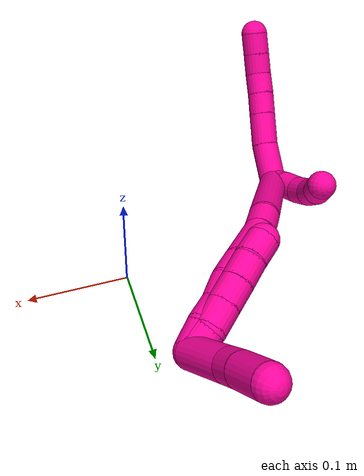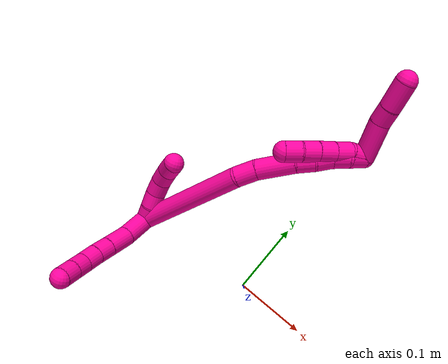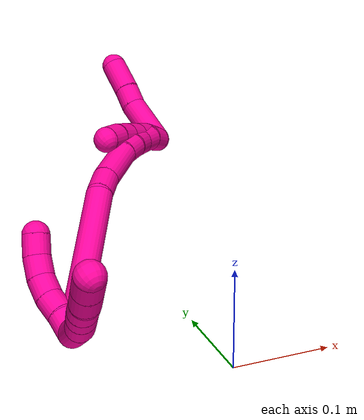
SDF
<sdf version="1.7">
 <world name="default">
  <model name="18">
   <static>0</static>
   <link name="18">
    <collision name="collision-cylinder-e_1_2_8">
     <pose>0.001398 -0.017551 -0.007106 1.95548 0.073693 0.109279</pose>
     <geometry><cylinder><radius>0.0125</radius><length>0.037974</length></cylinder></geometry>
     <surface>
      <friction><ode><mu>1.16</mu><mu2>1.16</mu2><slip1>0</slip1><slip2>0</slip2></ode></friction>
      <contact><ode><kp>1e+06</kp><kd>1</kd><max_vel>0</max_vel><min_depth>0.001</min_depth></ode></contact>
     </surface>
    </collision>
    <visual name="visual-cylinder-e_1_2_8">
     <pose>0.001398 -0.017551 -0.007106 1.95548 0.073693 0.109279</pose>
     <geometry><cylinder><radius>0.0125</radius><length>0.037974</length></cylinder></geometry>
     <material><ambient>1 0.007843 0.615686 1</ambient></material>
    </visual>
    <collision name="collision-cylinder-e_2_8_9">
     <pose>0.002845 -0.050009 -0.018105 1.82628 0.003207 0.004152</pose>
     <geometry><cylinder><radius>0.0125</radius><length>0.030813</length></cylinder></geometry>
     <surface>
      <friction><ode><mu>1.16</mu><mu2>1.16</mu2><slip1>0</slip1><slip2>0</slip2></ode></friction>
      <contact><ode><kp>1e+06</kp><kd>1</kd><max_vel>0</max_vel><min_depth>0.001</min_depth></ode></contact>
     </surface>
    </collision>
    <visual name="visual-cylinder-e_2_8_9">
     <pose>0.002845 -0.050009 -0.018105 1.82628 0.003207 0.004152</pose>
     <geometry><cylinder><radius>0.0125</radius><length>0.030813</length></cylinder></geometry>
     <material><ambient>1 0.007843 0.615686 1</ambient></material>
    </visual>
    <collision name="collision-cylinder-e_3_9_10">
     <pose>0.00306 -0.074988 -0.024319 1.79722 0.015968 0.020065</pose>
     <geometry><cylinder><radius>0.0125</radius><length>0.020675</length></cylinder></geometry>
     <surface>
      <friction><ode><mu>1.16</mu><mu2>1.16</mu2><slip1>0</slip1><slip2>0</slip2></ode></friction>
      <contact><ode><kp>1e+06</kp><kd>1</kd><max_vel>0</max_vel><min_depth>0.001</min_depth></ode></contact>
     </surface>
    </collision>
    <visual name="visual-cylinder-e_3_9_10">
     <pose>0.00306 -0.074988 -0.024319 1.79722 0.015968 0.020065</pose>
     <geometry><cylinder><radius>0.0125</radius><length>0.020675</length></cylinder></geometry>
     <material><ambient>1 0.007843 0.615686 1</ambient></material>
    </visual>
    <collision name="collision-cylinder-e_4_10_11">
     <pose>0.00384 -0.094914 -0.029039 1.80972 0.060551 0.077056</pose>
     <geometry><cylinder><radius>0.0125</radius><length>0.020319</length></cylinder></geometry>
     <surface>
      <friction><ode><mu>1.16</mu><mu2>1.16</mu2><slip1>0</slip1><slip2>0</slip2></ode></friction>
      <contact><ode><kp>1e+06</kp><kd>1</kd><max_vel>0</max_vel><min_depth>0.001</min_depth></ode></contact>
     </surface>
    </collision>
    <visual name="visual-cylinder-e_4_10_11">
     <pose>0.00384 -0.094914 -0.029039 1.80972 0.060551 0.077056</pose>
     <geometry><cylinder><radius>0.0125</radius><length>0.020319</length></cylinder></geometry>
     <material><ambient>1 0.007843 0.615686 1</ambient></material>
    </visual>
    <collision name="collision-cylinder-e_5_11_12">
     <pose>0.005981 -0.114674 -0.031983 1.62562 0.152669 0.16124</pose>
     <geometry><cylinder><radius>0.0125</radius><length>0.020078</length></cylinder></geometry>
     <surface>
      <friction><ode><mu>1.16</mu><mu2>1.16</mu2><slip1>0</slip1><slip2>0</slip2></ode></friction>
      <contact><ode><kp>1e+06</kp><kd>1</kd><max_vel>0</max_vel><min_depth>0.001</min_depth></ode></contact>
     </surface>
    </collision>
    <visual name="visual-cylinder-e_5_11_12">
     <pose>0.005981 -0.114674 -0.031983 1.62562 0.152669 0.16124</pose>
     <geometry><cylinder><radius>0.0125</radius><length>0.020078</length></cylinder></geometry>
     <material><ambient>1 0.007843 0.615686 1</ambient></material>
    </visual>
    <collision name="collision-cylinder-e_6_12_6">
     <pose>0.009111 -0.134509 -0.033047 1.62316 0.159927 0.168488</pose>
     <geometry><cylinder><radius>0.0125</radius><length>0.020141</length></cylinder></geometry>
     <surface>
      <friction><ode><mu>1.16</mu><mu2>1.16</mu2><slip1>0</slip1><slip2>0</slip2></ode></friction>
      <contact><ode><kp>1e+06</kp><kd>1</kd><max_vel>0</max_vel><min_depth>0.001</min_depth></ode></contact>
     </surface>
    </collision>
    <visual name="visual-cylinder-e_6_12_6">
     <pose>0.009111 -0.134509 -0.033047 1.62316 0.159927 0.168488</pose>
     <geometry><cylinder><radius>0.0125</radius><length>0.020141</length></cylinder></geometry>
     <material><ambient>1 0.007843 0.615686 1</ambient></material>
    </visual>
    <collision name="collision-cylinder-e_1_2_13">
     <pose>8.8e-05 -2.1e-05 0.01 0.002085 0.008831 9e-06</pose>
     <geometry><cylinder><radius>0.0125</radius><length>0.02</length></cylinder></geometry>
     <surface>
      <friction><ode><mu>1.16</mu><mu2>1.16</mu2><slip1>0</slip1><slip2>0</slip2></ode></friction>
      <contact><ode><kp>1e+06</kp><kd>1</kd><max_vel>0</max_vel><min_depth>0.001</min_depth></ode></contact>
     </surface>
    </collision>
    <visual name="visual-cylinder-e_1_2_13">
     <pose>8.8e-05 -2.1e-05 0.01 0.002085 0.008831 9e-06</pose>
     <geometry><cylinder><radius>0.0125</radius><length>0.02</length></cylinder></geometry>
     <material><ambient>1 0.007843 0.615686 1</ambient></material>
    </visual>
    <collision name="collision-cylinder-e_2_13_14">
     <pose>-0.00056 0.001213 0.029893 -0.12611 -0.073739 0.004658</pose>
     <geometry><cylinder><radius>0.0125</radius><length>0.02</length></cylinder></geometry>
     <surface>
      <friction><ode><mu>1.16</mu><mu2>1.16</mu2><slip1>0</slip1><slip2>0</slip2></ode></friction>
      <contact><ode><kp>1e+06</kp><kd>1</kd><max_vel>0</max_vel><min_depth>0.001</min_depth></ode></contact>
     </surface>
    </collision>
    <visual name="visual-cylinder-e_2_13_14">
     <pose>-0.00056 0.001213 0.029893 -0.12611 -0.073739 0.004658</pose>
     <geometry><cylinder><radius>0.0125</radius><length>0.02</length></cylinder></geometry>
     <material><ambient>1 0.007843 0.615686 1</ambient></material>
    </visual>
    <collision name="collision-cylinder-e_3_14_15">
     <pose>-0.000254 0.0021 0.049725 0.036948 0.104519 0.001933</pose>
     <geometry><cylinder><radius>0.0125</radius><length>0.02</length></cylinder></geometry>
     <surface>
      <friction><ode><mu>1.16</mu><mu2>1.16</mu2><slip1>0</slip1><slip2>0</slip2></ode></friction>
      <contact><ode><kp>1e+06</kp><kd>1</kd><max_vel>0</max_vel><min_depth>0.001</min_depth></ode></contact>
     </surface>
    </collision>
    <visual name="visual-cylinder-e_3_14_15">
     <pose>-0.000254 0.0021 0.049725 0.036948 0.104519 0.001933</pose>
     <geometry><cylinder><radius>0.0125</radius><length>0.02</length></cylinder></geometry>
     <material><ambient>1 0.007843 0.615686 1</ambient></material>
    </visual>
    <collision name="collision-cylinder-e_4_15_16">
     <pose>0.003684 -0.000358 0.069005 0.220134 0.293649 0.032685</pose>
     <geometry><cylinder><radius>0.0125</radius><length>0.02</length></cylinder></geometry>
     <surface>
      <friction><ode><mu>1.16</mu><mu2>1.16</mu2><slip1>0</slip1><slip2>0</slip2></ode></friction>
      <contact><ode><kp>1e+06</kp><kd>1</kd><max_vel>0</max_vel><min_depth>0.001</min_depth></ode></contact>
     </surface>
    </collision>
    <visual name="visual-cylinder-e_4_15_16">
     <pose>0.003684 -0.000358 0.069005 0.220134 0.293649 0.032685</pose>
     <geometry><cylinder><radius>0.0125</radius><length>0.02</length></cylinder></geometry>
     <material><ambient>1 0.007843 0.615686 1</ambient></material>
    </visual>
    <collision name="collision-cylinder-e_5_16_5">
     <pose>0.010723 -0.006076 0.086692 0.410051 0.427363 0.090186</pose>
     <geometry><cylinder><radius>0.0125</radius><length>0.02</length></cylinder></geometry>
     <surface>
      <friction><ode><mu>1.16</mu><mu2>1.16</mu2><slip1>0</slip1><slip2>0</slip2></ode></friction>
      <contact><ode><kp>1e+06</kp><kd>1</kd><max_vel>0</max_vel><min_depth>0.001</min_depth></ode></contact>
     </surface>
    </collision>
    <visual name="visual-cylinder-e_5_16_5">
     <pose>0.010723 -0.006076 0.086692 0.410051 0.427363 0.090186</pose>
     <geometry><cylinder><radius>0.0125</radius><length>0.02</length></cylinder></geometry>
     <material><ambient>1 0.007843 0.615686 1</ambient></material>
    </visual>
    <collision name="collision-cylinder-e_1_2_17">
     <pose>0.043815 0.005803 0.058168 -0.099433 0.643203 -0.033152</pose>
     <geometry><cylinder><radius>0.0125</radius><length>0.146109</length></cylinder></geometry>
     <surface>
      <friction><ode><mu>1.16</mu><mu2>1.16</mu2><slip1>0</slip1><slip2>0</slip2></ode></friction>
      <contact><ode><kp>1e+06</kp><kd>1</kd><max_vel>0</max_vel><min_depth>0.001</min_depth></ode></contact>
     </surface>
    </collision>
    <visual name="visual-cylinder-e_1_2_17">
     <pose>0.043815 0.005803 0.058168 -0.099433 0.643203 -0.033152</pose>
     <geometry><cylinder><radius>0.0125</radius><length>0.146109</length></cylinder></geometry>
     <material><ambient>1 0.007843 0.615686 1</ambient></material>
    </visual>
    <collision name="collision-cylinder-e_2_17_18">
     <pose>0.095477 0.016024 0.125299 -0.458003 0.665679 -0.160811</pose>
     <geometry><cylinder><radius>0.0125</radius><length>0.025411</length></cylinder></geometry>
     <surface>
      <friction><ode><mu>1.16</mu><mu2>1.16</mu2><slip1>0</slip1><slip2>0</slip2></ode></friction>
      <contact><ode><kp>1e+06</kp><kd>1</kd><max_vel>0</max_vel><min_depth>0.001</min_depth></ode></contact>
     </surface>
    </collision>
    <visual name="visual-cylinder-e_2_17_18">
     <pose>0.095477 0.016024 0.125299 -0.458003 0.665679 -0.160811</pose>
     <geometry><cylinder><radius>0.0125</radius><length>0.025411</length></cylinder></geometry>
     <material><ambient>1 0.007843 0.615686 1</ambient></material>
    </visual>
    <collision name="collision-cylinder-e_3_18_19">
     <pose>0.120159 0.028282 0.14778 -0.525543 0.822586 -0.233584</pose>
     <geometry><cylinder><radius>0.0125</radius><length>0.045938</length></cylinder></geometry>
     <surface>
      <friction><ode><mu>1.16</mu><mu2>1.16</mu2><slip1>0</slip1><slip2>0</slip2></ode></friction>
      <contact><ode><kp>1e+06</kp><kd>1</kd><max_vel>0</max_vel><min_depth>0.001</min_depth></ode></contact>
     </surface>
    </collision>
    <visual name="visual-cylinder-e_3_18_19">
     <pose>0.120159 0.028282 0.14778 -0.525543 0.822586 -0.233584</pose>
     <geometry><cylinder><radius>0.0125</radius><length>0.045938</length></cylinder></geometry>
     <material><ambient>1 0.007843 0.615686 1</ambient></material>
    </visual>
    <collision name="collision-cylinder-e_4_19_20">
     <pose>0.144772 0.041548 0.166083 -0.848041 0.821644 -0.388316</pose>
     <geometry><cylinder><radius>0.0125</radius><length>0.021246</length></cylinder></geometry>
     <surface>
      <friction><ode><mu>1.16</mu><mu2>1.16</mu2><slip1>0</slip1><slip2>0</slip2></ode></friction>
      <contact><ode><kp>1e+06</kp><kd>1</kd><max_vel>0</max_vel><min_depth>0.001</min_depth></ode></contact>
     </surface>
    </collision>
    <visual name="visual-cylinder-e_4_19_20">
     <pose>0.144772 0.041548 0.166083 -0.848041 0.821644 -0.388316</pose>
     <geometry><cylinder><radius>0.0125</radius><length>0.021246</length></cylinder></geometry>
     <material><ambient>1 0.007843 0.615686 1</ambient></material>
    </visual>
    <collision name="collision-cylinder-e_5_20_21">
     <pose>0.158858 0.053865 0.175533 -0.975701 0.648535 -0.353012</pose>
     <geometry><cylinder><radius>0.0125</radius><length>0.020884</length></cylinder></geometry>
     <surface>
      <friction><ode><mu>1.16</mu><mu2>1.16</mu2><slip1>0</slip1><slip2>0</slip2></ode></friction>
      <contact><ode><kp>1e+06</kp><kd>1</kd><max_vel>0</max_vel><min_depth>0.001</min_depth></ode></contact>
     </surface>
    </collision>
    <visual name="visual-cylinder-e_5_20_21">
     <pose>0.158858 0.053865 0.175533 -0.975701 0.648535 -0.353012</pose>
     <geometry><cylinder><radius>0.0125</radius><length>0.020884</length></cylinder></geometry>
     <material><ambient>1 0.007843 0.615686 1</ambient></material>
    </visual>
    <collision name="collision-cylinder-e_6_21_22">
     <pose>0.172427 0.066689 0.183817 -1.02319 0.807428 -0.470788</pose>
     <geometry><cylinder><radius>0.0125</radius><length>0.020102</length></cylinder></geometry>
     <surface>
      <friction><ode><mu>1.16</mu><mu2>1.16</mu2><slip1>0</slip1><slip2>0</slip2></ode></friction>
      <contact><ode><kp>1e+06</kp><kd>1</kd><max_vel>0</max_vel><min_depth>0.001</min_depth></ode></contact>
     </surface>
    </collision>
    <visual name="visual-cylinder-e_6_21_22">
     <pose>0.172427 0.066689 0.183817 -1.02319 0.807428 -0.470788</pose>
     <geometry><cylinder><radius>0.0125</radius><length>0.020102</length></cylinder></geometry>
     <material><ambient>1 0.007843 0.615686 1</ambient></material>
    </visual>
    <collision name="collision-cylinder-e_7_22_1">
     <pose>0.185557 0.080601 0.189677 -1.29682 0.616032 -0.473086</pose>
     <geometry><cylinder><radius>0.0125</radius><length>0.020309</length></cylinder></geometry>
     <surface>
      <friction><ode><mu>1.16</mu><mu2>1.16</mu2><slip1>0</slip1><slip2>0</slip2></ode></friction>
      <contact><ode><kp>1e+06</kp><kd>1</kd><max_vel>0</max_vel><min_depth>0.001</min_depth></ode></contact>
     </surface>
    </collision>
    <visual name="visual-cylinder-e_7_22_1">
     <pose>0.185557 0.080601 0.189677 -1.29682 0.616032 -0.473086</pose>
     <geometry><cylinder><radius>0.0125</radius><length>0.020309</length></cylinder></geometry>
     <material><ambient>1 0.007843 0.615686 1</ambient></material>
    </visual>
    <collision name="collision-cylinder-e_1_1_23">
     <pose>0.184841 0.081064 0.19235 1.51353 -0.718585 -0.681673</pose>
     <geometry><cylinder><radius>0.0125</radius><length>0.02</length></cylinder></geometry>
     <surface>
      <friction><ode><mu>1.16</mu><mu2>1.16</mu2><slip1>0</slip1><slip2>0</slip2></ode></friction>
      <contact><ode><kp>1e+06</kp><kd>1</kd><max_vel>0</max_vel><min_depth>0.001</min_depth></ode></contact>
     </surface>
    </collision>
    <visual name="visual-cylinder-e_1_1_23">
     <pose>0.184841 0.081064 0.19235 1.51353 -0.718585 -0.681673</pose>
     <geometry><cylinder><radius>0.0125</radius><length>0.02</length></cylinder></geometry>
     <material><ambient>1 0.007843 0.615686 1</ambient></material>
    </visual>
    <collision name="collision-cylinder-e_2_23_24">
     <pose>0.171727 0.066376 0.190353 1.8971 -0.711591 -0.95599</pose>
     <geometry><cylinder><radius>0.0125</radius><length>0.02</length></cylinder></geometry>
     <surface>
      <friction><ode><mu>1.16</mu><mu2>1.16</mu2><slip1>0</slip1><slip2>0</slip2></ode></friction>
      <contact><ode><kp>1e+06</kp><kd>1</kd><max_vel>0</max_vel><min_depth>0.001</min_depth></ode></contact>
     </surface>
    </collision>
    <visual name="visual-cylinder-e_2_23_24">
     <pose>0.171727 0.066376 0.190353 1.8971 -0.711591 -0.95599</pose>
     <geometry><cylinder><radius>0.0125</radius><length>0.02</length></cylinder></geometry>
     <material><ambient>1 0.007843 0.615686 1</ambient></material>
    </visual>
    <collision name="collision-cylinder-e_3_24_25">
     <pose>0.15867 0.051993 0.185594 1.88362 -0.711089 -0.94381</pose>
     <geometry><cylinder><radius>0.0125</radius><length>0.02</length></cylinder></geometry>
     <surface>
      <friction><ode><mu>1.16</mu><mu2>1.16</mu2><slip1>0</slip1><slip2>0</slip2></ode></friction>
      <contact><ode><kp>1e+06</kp><kd>1</kd><max_vel>0</max_vel><min_depth>0.001</min_depth></ode></contact>
     </surface>
    </collision>
    <visual name="visual-cylinder-e_3_24_25">
     <pose>0.15867 0.051993 0.185594 1.88362 -0.711089 -0.94381</pose>
     <geometry><cylinder><radius>0.0125</radius><length>0.02</length></cylinder></geometry>
     <material><ambient>1 0.007843 0.615686 1</ambient></material>
    </visual>
    <collision name="collision-cylinder-e_4_25_26">
     <pose>0.145636 0.037652 0.180661 1.92056 -0.708626 -0.972682</pose>
     <geometry><cylinder><radius>0.0125</radius><length>0.02</length></cylinder></geometry>
     <surface>
      <friction><ode><mu>1.16</mu><mu2>1.16</mu2><slip1>0</slip1><slip2>0</slip2></ode></friction>
      <contact><ode><kp>1e+06</kp><kd>1</kd><max_vel>0</max_vel><min_depth>0.001</min_depth></ode></contact>
     </surface>
    </collision>
    <visual name="visual-cylinder-e_4_25_26">
     <pose>0.145636 0.037652 0.180661 1.92056 -0.708626 -0.972682</pose>
     <geometry><cylinder><radius>0.0125</radius><length>0.02</length></cylinder></geometry>
     <material><ambient>1 0.007843 0.615686 1</ambient></material>
    </visual>
    <collision name="collision-cylinder-e_5_26_4">
     <pose>0.131937 0.024392 0.17478 2.06217 -0.802478 -1.23245</pose>
     <geometry><cylinder><radius>0.0125</radius><length>0.02</length></cylinder></geometry>
     <surface>
      <friction><ode><mu>1.16</mu><mu2>1.16</mu2><slip1>0</slip1><slip2>0</slip2></ode></friction>
      <contact><ode><kp>1e+06</kp><kd>1</kd><max_vel>0</max_vel><min_depth>0.001</min_depth></ode></contact>
     </surface>
    </collision>
    <visual name="visual-cylinder-e_5_26_4">
     <pose>0.131937 0.024392 0.17478 2.06217 -0.802478 -1.23245</pose>
     <geometry><cylinder><radius>0.0125</radius><length>0.02</length></cylinder></geometry>
     <material><ambient>1 0.007843 0.615686 1</ambient></material>
    </visual>
    <collision name="collision-cylinder-e_1_1_27">
     <pose>0.190462 0.085426 0.215018 0.135664 -0.041227 -0.002801</pose>
     <geometry><cylinder><radius>0.0125</radius><length>0.046666</length></cylinder></geometry>
     <surface>
      <friction><ode><mu>1.16</mu><mu2>1.16</mu2><slip1>0</slip1><slip2>0</slip2></ode></friction>
      <contact><ode><kp>1e+06</kp><kd>1</kd><max_vel>0</max_vel><min_depth>0.001</min_depth></ode></contact>
     </surface>
    </collision>
    <visual name="visual-cylinder-e_1_1_27">
     <pose>0.190462 0.085426 0.215018 0.135664 -0.041227 -0.002801</pose>
     <geometry><cylinder><radius>0.0125</radius><length>0.046666</length></cylinder></geometry>
     <material><ambient>1 0.007843 0.615686 1</ambient></material>
    </visual>
    <collision name="collision-cylinder-e_2_27_28">
     <pose>0.190891 0.080165 0.247942 0.211395 0.137503 0.014611</pose>
     <geometry><cylinder><radius>0.0125</radius><length>0.020288</length></cylinder></geometry>
     <surface>
      <friction><ode><mu>1.16</mu><mu2>1.16</mu2><slip1>0</slip1><slip2>0</slip2></ode></friction>
      <contact><ode><kp>1e+06</kp><kd>1</kd><max_vel>0</max_vel><min_depth>0.001</min_depth></ode></contact>
     </surface>
    </collision>
    <visual name="visual-cylinder-e_2_27_28">
     <pose>0.190891 0.080165 0.247942 0.211395 0.137503 0.014611</pose>
     <geometry><cylinder><radius>0.0125</radius><length>0.020288</length></cylinder></geometry>
     <material><ambient>1 0.007843 0.615686 1</ambient></material>
    </visual>
    <collision name="collision-cylinder-e_3_28_3">
     <pose>0.193695 0.075672 0.274055 0.145344 0.085669 0.006241</pose>
     <geometry><cylinder><radius>0.0125</radius><length>0.033046</length></cylinder></geometry>
     <surface>
      <friction><ode><mu>1.16</mu><mu2>1.16</mu2><slip1>0</slip1><slip2>0</slip2></ode></friction>
      <contact><ode><kp>1e+06</kp><kd>1</kd><max_vel>0</max_vel><min_depth>0.001</min_depth></ode></contact>
     </surface>
    </collision>
    <visual name="visual-cylinder-e_3_28_3">
     <pose>0.193695 0.075672 0.274055 0.145344 0.085669 0.006241</pose>
     <geometry><cylinder><radius>0.0125</radius><length>0.033046</length></cylinder></geometry>
     <material><ambient>1 0.007843 0.615686 1</ambient></material>
    </visual>
    <collision name="collision-sphere-3">
     <pose>0.195109 0.073288 0.290344 0 -0 0</pose>
     <geometry><sphere><radius>0.0125</radius></sphere></geometry>
     <surface>
      <friction><ode><mu>1.16</mu><mu2>1.16</mu2><slip1>0</slip1><slip2>0</slip2></ode></friction>
      <contact><ode><kp>1e+06</kp><kd>1</kd><max_vel>0</max_vel><min_depth>0.001</min_depth></ode></contact>
     </surface>
    </collision>
    <visual name="visual-sphere-3">
     <pose>0.195109 0.073288 0.290344 0 -0 0</pose>
     <geometry><sphere><radius>0.0125</radius></sphere></geometry>
     <material><ambient>1 0.007843 0.615686 1</ambient></material>
    </visual>
    <collision name="collision-sphere-28">
     <pose>0.192281 0.078057 0.257766 0 -0 0</pose>
     <geometry><sphere><radius>0.0125</radius></sphere></geometry>
     <surface>
      <friction><ode><mu>1.16</mu><mu2>1.16</mu2><slip1>0</slip1><slip2>0</slip2></ode></friction>
      <contact><ode><kp>1e+06</kp><kd>1</kd><max_vel>0</max_vel><min_depth>0.001</min_depth></ode></contact>
     </surface>
    </collision>
    <visual name="visual-sphere-28">
     <pose>0.192281 0.078057 0.257766 0 -0 0</pose>
     <geometry><sphere><radius>0.0125</radius></sphere></geometry>
     <material><ambient>1 0.007843 0.615686 1</ambient></material>
    </visual>
    <collision name="collision-sphere-27">
     <pose>0.189501 0.082273 0.238117 0 -0 0</pose>
     <geometry><sphere><radius>0.0125</radius></sphere></geometry>
     <surface>
      <friction><ode><mu>1.16</mu><mu2>1.16</mu2><slip1>0</slip1><slip2>0</slip2></ode></friction>
      <contact><ode><kp>1e+06</kp><kd>1</kd><max_vel>0</max_vel><min_depth>0.001</min_depth></ode></contact>
     </surface>
    </collision>
    <visual name="visual-sphere-27">
     <pose>0.189501 0.082273 0.238117 0 -0 0</pose>
     <geometry><sphere><radius>0.0125</radius></sphere></geometry>
     <material><ambient>1 0.007843 0.615686 1</ambient></material>
    </visual>
    <collision name="collision-sphere-4">
     <pose>0.124746 0.018265 0.171501 0 -0 0</pose>
     <geometry><sphere><radius>0.0125</radius></sphere></geometry>
     <surface>
      <friction><ode><mu>1.16</mu><mu2>1.16</mu2><slip1>0</slip1><slip2>0</slip2></ode></friction>
      <contact><ode><kp>1e+06</kp><kd>1</kd><max_vel>0</max_vel><min_depth>0.001</min_depth></ode></contact>
     </surface>
    </collision>
    <visual name="visual-sphere-4">
     <pose>0.124746 0.018265 0.171501 0 -0 0</pose>
     <geometry><sphere><radius>0.0125</radius></sphere></geometry>
     <material><ambient>1 0.007843 0.615686 1</ambient></material>
    </visual>
    <collision name="collision-sphere-26">
     <pose>0.139128 0.030519 0.178059 0 -0 0</pose>
     <geometry><sphere><radius>0.0125</radius></sphere></geometry>
     <surface>
      <friction><ode><mu>1.16</mu><mu2>1.16</mu2><slip1>0</slip1><slip2>0</slip2></ode></friction>
      <contact><ode><kp>1e+06</kp><kd>1</kd><max_vel>0</max_vel><min_depth>0.001</min_depth></ode></contact>
     </surface>
    </collision>
    <visual name="visual-sphere-26">
     <pose>0.139128 0.030519 0.178059 0 -0 0</pose>
     <geometry><sphere><radius>0.0125</radius></sphere></geometry>
     <material><ambient>1 0.007843 0.615686 1</ambient></material>
    </visual>
    <collision name="collision-sphere-25">
     <pose>0.152143 0.044784 0.183263 0 -0 0</pose>
     <geometry><sphere><radius>0.0125</radius></sphere></geometry>
     <surface>
      <friction><ode><mu>1.16</mu><mu2>1.16</mu2><slip1>0</slip1><slip2>0</slip2></ode></friction>
      <contact><ode><kp>1e+06</kp><kd>1</kd><max_vel>0</max_vel><min_depth>0.001</min_depth></ode></contact>
     </surface>
    </collision>
    <visual name="visual-sphere-25">
     <pose>0.152143 0.044784 0.183263 0 -0 0</pose>
     <geometry><sphere><radius>0.0125</radius></sphere></geometry>
     <material><ambient>1 0.007843 0.615686 1</ambient></material>
    </visual>
    <collision name="collision-sphere-24">
     <pose>0.165197 0.059202 0.187926 0 -0 0</pose>
     <geometry><sphere><radius>0.0125</radius></sphere></geometry>
     <surface>
      <friction><ode><mu>1.16</mu><mu2>1.16</mu2><slip1>0</slip1><slip2>0</slip2></ode></friction>
      <contact><ode><kp>1e+06</kp><kd>1</kd><max_vel>0</max_vel><min_depth>0.001</min_depth></ode></contact>
     </surface>
    </collision>
    <visual name="visual-sphere-24">
     <pose>0.165197 0.059202 0.187926 0 -0 0</pose>
     <geometry><sphere><radius>0.0125</radius></sphere></geometry>
     <material><ambient>1 0.007843 0.615686 1</ambient></material>
    </visual>
    <collision name="collision-sphere-23">
     <pose>0.178257 0.073549 0.192781 0 -0 0</pose>
     <geometry><sphere><radius>0.0125</radius></sphere></geometry>
     <surface>
      <friction><ode><mu>1.16</mu><mu2>1.16</mu2><slip1>0</slip1><slip2>0</slip2></ode></friction>
      <contact><ode><kp>1e+06</kp><kd>1</kd><max_vel>0</max_vel><min_depth>0.001</min_depth></ode></contact>
     </surface>
    </collision>
    <visual name="visual-sphere-23">
     <pose>0.178257 0.073549 0.192781 0 -0 0</pose>
     <geometry><sphere><radius>0.0125</radius></sphere></geometry>
     <material><ambient>1 0.007843 0.615686 1</ambient></material>
    </visual>
    <collision name="collision-sphere-1">
     <pose>0.191424 0.088579 0.191919 0 -0 0</pose>
     <geometry><sphere><radius>0.0125</radius></sphere></geometry>
     <surface>
      <friction><ode><mu>1.16</mu><mu2>1.16</mu2><slip1>0</slip1><slip2>0</slip2></ode></friction>
      <contact><ode><kp>1e+06</kp><kd>1</kd><max_vel>0</max_vel><min_depth>0.001</min_depth></ode></contact>
     </surface>
    </collision>
    <visual name="visual-sphere-1">
     <pose>0.191424 0.088579 0.191919 0 -0 0</pose>
     <geometry><sphere><radius>0.0125</radius></sphere></geometry>
     <material><ambient>1 0.007843 0.615686 1</ambient></material>
    </visual>
    <collision name="collision-sphere-22">
     <pose>0.179689 0.072622 0.187434 0 -0 0</pose>
     <geometry><sphere><radius>0.0125</radius></sphere></geometry>
     <surface>
      <friction><ode><mu>1.16</mu><mu2>1.16</mu2><slip1>0</slip1><slip2>0</slip2></ode></friction>
      <contact><ode><kp>1e+06</kp><kd>1</kd><max_vel>0</max_vel><min_depth>0.001</min_depth></ode></contact>
     </surface>
    </collision>
    <visual name="visual-sphere-22">
     <pose>0.179689 0.072622 0.187434 0 -0 0</pose>
     <geometry><sphere><radius>0.0125</radius></sphere></geometry>
     <material><ambient>1 0.007843 0.615686 1</ambient></material>
    </visual>
    <collision name="collision-sphere-21">
     <pose>0.165165 0.060757 0.180199 0 -0 0</pose>
     <geometry><sphere><radius>0.0125</radius></sphere></geometry>
     <surface>
      <friction><ode><mu>1.16</mu><mu2>1.16</mu2><slip1>0</slip1><slip2>0</slip2></ode></friction>
      <contact><ode><kp>1e+06</kp><kd>1</kd><max_vel>0</max_vel><min_depth>0.001</min_depth></ode></contact>
     </surface>
    </collision>
    <visual name="visual-sphere-21">
     <pose>0.165165 0.060757 0.180199 0 -0 0</pose>
     <geometry><sphere><radius>0.0125</radius></sphere></geometry>
     <material><ambient>1 0.007843 0.615686 1</ambient></material>
    </visual>
    <collision name="collision-sphere-12">
     <pose>0.007508 -0.124581 -0.032527 0 -0 0</pose>
     <geometry><sphere><radius>0.0125</radius></sphere></geometry>
     <surface>
      <friction><ode><mu>1.16</mu><mu2>1.16</mu2><slip1>0</slip1><slip2>0</slip2></ode></friction>
      <contact><ode><kp>1e+06</kp><kd>1</kd><max_vel>0</max_vel><min_depth>0.001</min_depth></ode></contact>
     </surface>
    </collision>
    <visual name="visual-sphere-12">
     <pose>0.007508 -0.124581 -0.032527 0 -0 0</pose>
     <geometry><sphere><radius>0.0125</radius></sphere></geometry>
     <material><ambient>1 0.007843 0.615686 1</ambient></material>
    </visual>
    <collision name="collision-sphere-11">
     <pose>0.004454 -0.104767 -0.031439 0 -0 0</pose>
     <geometry><sphere><radius>0.0125</radius></sphere></geometry>
     <surface>
      <friction><ode><mu>1.16</mu><mu2>1.16</mu2><slip1>0</slip1><slip2>0</slip2></ode></friction>
      <contact><ode><kp>1e+06</kp><kd>1</kd><max_vel>0</max_vel><min_depth>0.001</min_depth></ode></contact>
     </surface>
    </collision>
    <visual name="visual-sphere-11">
     <pose>0.004454 -0.104767 -0.031439 0 -0 0</pose>
     <geometry><sphere><radius>0.0125</radius></sphere></geometry>
     <material><ambient>1 0.007843 0.615686 1</ambient></material>
    </visual>
    <collision name="collision-sphere-10">
     <pose>0.003225 -0.085061 -0.026639 0 -0 0</pose>
     <geometry><sphere><radius>0.0125</radius></sphere></geometry>
     <surface>
      <friction><ode><mu>1.16</mu><mu2>1.16</mu2><slip1>0</slip1><slip2>0</slip2></ode></friction>
      <contact><ode><kp>1e+06</kp><kd>1</kd><max_vel>0</max_vel><min_depth>0.001</min_depth></ode></contact>
     </surface>
    </collision>
    <visual name="visual-sphere-10">
     <pose>0.003225 -0.085061 -0.026639 0 -0 0</pose>
     <geometry><sphere><radius>0.0125</radius></sphere></geometry>
     <material><ambient>1 0.007843 0.615686 1</ambient></material>
    </visual>
    <collision name="collision-sphere-9">
     <pose>0.002895 -0.064916 -0.021999 0 -0 0</pose>
     <geometry><sphere><radius>0.0125</radius></sphere></geometry>
     <surface>
      <friction><ode><mu>1.16</mu><mu2>1.16</mu2><slip1>0</slip1><slip2>0</slip2></ode></friction>
      <contact><ode><kp>1e+06</kp><kd>1</kd><max_vel>0</max_vel><min_depth>0.001</min_depth></ode></contact>
     </surface>
    </collision>
    <visual name="visual-sphere-9">
     <pose>0.002895 -0.064916 -0.021999 0 -0 0</pose>
     <geometry><sphere><radius>0.0125</radius></sphere></geometry>
     <material><ambient>1 0.007843 0.615686 1</ambient></material>
    </visual>
    <collision name="collision-sphere-2">
     <geometry><sphere><radius>0.0125</radius></sphere></geometry>
     <surface>
      <friction><ode><mu>1.16</mu><mu2>1.16</mu2><slip1>0</slip1><slip2>0</slip2></ode></friction>
      <contact><ode><kp>1e+06</kp><kd>1</kd><max_vel>0</max_vel><min_depth>0.001</min_depth></ode></contact>
     </surface>
    </collision>
    <visual name="visual-sphere-2">
     <geometry><sphere><radius>0.0125</radius></sphere></geometry>
     <material><ambient>1 0.007843 0.615686 1</ambient></material>
    </visual>
    <collision name="collision-sphere-19">
     <pose>0.136993 0.036122 0.161298 0 -0 0</pose>
     <geometry><sphere><radius>0.0125</radius></sphere></geometry>
     <surface>
      <friction><ode><mu>1.16</mu><mu2>1.16</mu2><slip1>0</slip1><slip2>0</slip2></ode></friction>
      <contact><ode><kp>1e+06</kp><kd>1</kd><max_vel>0</max_vel><min_depth>0.001</min_depth></ode></contact>
     </surface>
    </collision>
    <visual name="visual-sphere-19">
     <pose>0.136993 0.036122 0.161298 0 -0 0</pose>
     <geometry><sphere><radius>0.0125</radius></sphere></geometry>
     <material><ambient>1 0.007843 0.615686 1</ambient></material>
    </visual>
    <collision name="collision-sphere-8">
     <pose>0.002796 -0.035103 -0.014212 0 -0 0</pose>
     <geometry><sphere><radius>0.0125</radius></sphere></geometry>
     <surface>
      <friction><ode><mu>1.16</mu><mu2>1.16</mu2><slip1>0</slip1><slip2>0</slip2></ode></friction>
      <contact><ode><kp>1e+06</kp><kd>1</kd><max_vel>0</max_vel><min_depth>0.001</min_depth></ode></contact>
     </surface>
    </collision>
    <visual name="visual-sphere-8">
     <pose>0.002796 -0.035103 -0.014212 0 -0 0</pose>
     <geometry><sphere><radius>0.0125</radius></sphere></geometry>
     <material><ambient>1 0.007843 0.615686 1</ambient></material>
    </visual>
    <collision name="collision-sphere-6">
     <pose>0.010715 -0.144438 -0.033567 0 -0 0</pose>
     <geometry><sphere><radius>0.0125</radius></sphere></geometry>
     <surface>
      <friction><ode><mu>1.16</mu><mu2>1.16</mu2><slip1>0</slip1><slip2>0</slip2></ode></friction>
      <contact><ode><kp>1e+06</kp><kd>1</kd><max_vel>0</max_vel><min_depth>0.001</min_depth></ode></contact>
     </surface>
    </collision>
    <visual name="visual-sphere-6">
     <pose>0.010715 -0.144438 -0.033567 0 -0 0</pose>
     <geometry><sphere><radius>0.0125</radius></sphere></geometry>
     <material><ambient>1 0.007843 0.615686 1</ambient></material>
    </visual>
    <collision name="collision-sphere-13">
     <pose>0.000177 -4.2e-05 0.019999 0 -0 0</pose>
     <geometry><sphere><radius>0.0125</radius></sphere></geometry>
     <surface>
      <friction><ode><mu>1.16</mu><mu2>1.16</mu2><slip1>0</slip1><slip2>0</slip2></ode></friction>
      <contact><ode><kp>1e+06</kp><kd>1</kd><max_vel>0</max_vel><min_depth>0.001</min_depth></ode></contact>
     </surface>
    </collision>
    <visual name="visual-sphere-13">
     <pose>0.000177 -4.2e-05 0.019999 0 -0 0</pose>
     <geometry><sphere><radius>0.0125</radius></sphere></geometry>
     <material><ambient>1 0.007843 0.615686 1</ambient></material>
    </visual>
    <collision name="collision-sphere-14">
     <pose>-0.001297 0.002467 0.039786 0 -0 0</pose>
     <geometry><sphere><radius>0.0125</radius></sphere></geometry>
     <surface>
      <friction><ode><mu>1.16</mu><mu2>1.16</mu2><slip1>0</slip1><slip2>0</slip2></ode></friction>
      <contact><ode><kp>1e+06</kp><kd>1</kd><max_vel>0</max_vel><min_depth>0.001</min_depth></ode></contact>
     </surface>
    </collision>
    <visual name="visual-sphere-14">
     <pose>-0.001297 0.002467 0.039786 0 -0 0</pose>
     <geometry><sphere><radius>0.0125</radius></sphere></geometry>
     <material><ambient>1 0.007843 0.615686 1</ambient></material>
    </visual>
    <collision name="collision-sphere-15">
     <pose>0.00079 0.001732 0.059664 0 -0 0</pose>
     <geometry><sphere><radius>0.0125</radius></sphere></geometry>
     <surface>
      <friction><ode><mu>1.16</mu><mu2>1.16</mu2><slip1>0</slip1><slip2>0</slip2></ode></friction>
      <contact><ode><kp>1e+06</kp><kd>1</kd><max_vel>0</max_vel><min_depth>0.001</min_depth></ode></contact>
     </surface>
    </collision>
    <visual name="visual-sphere-15">
     <pose>0.00079 0.001732 0.059664 0 -0 0</pose>
     <geometry><sphere><radius>0.0125</radius></sphere></geometry>
     <material><ambient>1 0.007843 0.615686 1</ambient></material>
    </visual>
    <collision name="collision-sphere-16">
     <pose>0.006579 -0.002448 0.078346 0 -0 0</pose>
     <geometry><sphere><radius>0.0125</radius></sphere></geometry>
     <surface>
      <friction><ode><mu>1.16</mu><mu2>1.16</mu2><slip1>0</slip1><slip2>0</slip2></ode></friction>
      <contact><ode><kp>1e+06</kp><kd>1</kd><max_vel>0</max_vel><min_depth>0.001</min_depth></ode></contact>
     </surface>
    </collision>
    <visual name="visual-sphere-16">
     <pose>0.006579 -0.002448 0.078346 0 -0 0</pose>
     <geometry><sphere><radius>0.0125</radius></sphere></geometry>
     <material><ambient>1 0.007843 0.615686 1</ambient></material>
    </visual>
    <collision name="collision-sphere-5">
     <pose>0.014868 -0.009704 0.095038 0 -0 0</pose>
     <geometry><sphere><radius>0.0125</radius></sphere></geometry>
     <surface>
      <friction><ode><mu>1.16</mu><mu2>1.16</mu2><slip1>0</slip1><slip2>0</slip2></ode></friction>
      <contact><ode><kp>1e+06</kp><kd>1</kd><max_vel>0</max_vel><min_depth>0.001</min_depth></ode></contact>
     </surface>
    </collision>
    <visual name="visual-sphere-5">
     <pose>0.014868 -0.009704 0.095038 0 -0 0</pose>
     <geometry><sphere><radius>0.0125</radius></sphere></geometry>
     <material><ambient>1 0.007843 0.615686 1</ambient></material>
    </visual>
    <collision name="collision-sphere-17">
     <pose>0.08763 0.011606 0.116336 0 -0 0</pose>
     <geometry><sphere><radius>0.0125</radius></sphere></geometry>
     <surface>
      <friction><ode><mu>1.16</mu><mu2>1.16</mu2><slip1>0</slip1><slip2>0</slip2></ode></friction>
      <contact><ode><kp>1e+06</kp><kd>1</kd><max_vel>0</max_vel><min_depth>0.001</min_depth></ode></contact>
     </surface>
    </collision>
    <visual name="visual-sphere-17">
     <pose>0.08763 0.011606 0.116336 0 -0 0</pose>
     <geometry><sphere><radius>0.0125</radius></sphere></geometry>
     <material><ambient>1 0.007843 0.615686 1</ambient></material>
    </visual>
    <collision name="collision-sphere-18">
     <pose>0.103324 0.020443 0.134262 0 -0 0</pose>
     <geometry><sphere><radius>0.0125</radius></sphere></geometry>
     <surface>
      <friction><ode><mu>1.16</mu><mu2>1.16</mu2><slip1>0</slip1><slip2>0</slip2></ode></friction>
      <contact><ode><kp>1e+06</kp><kd>1</kd><max_vel>0</max_vel><min_depth>0.001</min_depth></ode></contact>
     </surface>
    </collision>
    <visual name="visual-sphere-18">
     <pose>0.103324 0.020443 0.134262 0 -0 0</pose>
     <geometry><sphere><radius>0.0125</radius></sphere></geometry>
     <material><ambient>1 0.007843 0.615686 1</ambient></material>
    </visual>
    <collision name="collision-sphere-20">
     <pose>0.152551 0.046974 0.170868 0 -0 0</pose>
     <geometry><sphere><radius>0.0125</radius></sphere></geometry>
     <surface>
      <friction><ode><mu>1.16</mu><mu2>1.16</mu2><slip1>0</slip1><slip2>0</slip2></ode></friction>
      <contact><ode><kp>1e+06</kp><kd>1</kd><max_vel>0</max_vel><min_depth>0.001</min_depth></ode></contact>
     </surface>
    </collision>
    <visual name="visual-sphere-20">
     <pose>0.152551 0.046974 0.170868 0 -0 0</pose>
     <geometry><sphere><radius>0.0125</radius></sphere></geometry>
     <material><ambient>1 0.007843 0.615686 1</ambient></material>
    </visual>
    <inertial>
     <pose>0.085138 0.013496 0.103316 0 -0 0</pose>
     <mass>0.75</mass>
     <inertia>
      <ixx>0.000265</ixx>
      <ixy>0</ixy>
      <ixz>0</ixz>
      <iyy>0.000277</iyy>
      <iyz>0</iyz>
      <izz>-0.00015</izz>
     </inertia>
    </inertial>
   </link>
   <pose>-0.154872 -0.013575 0.076485 -1.00827 -0.303645 0.06648</pose>
  </model>
 </world>
</sdf>
